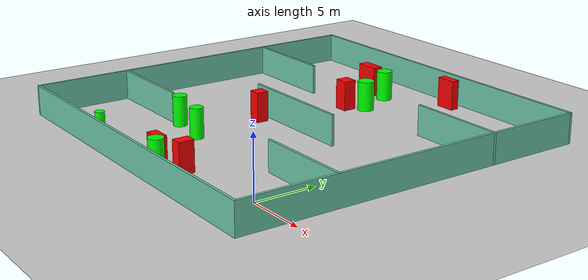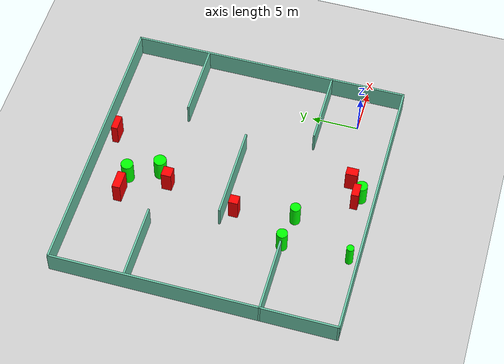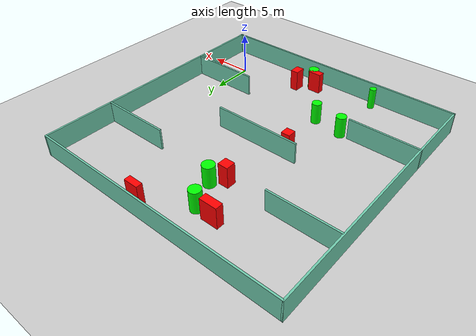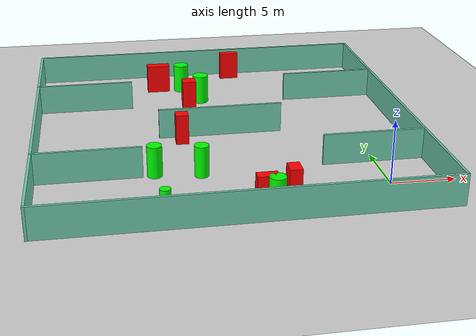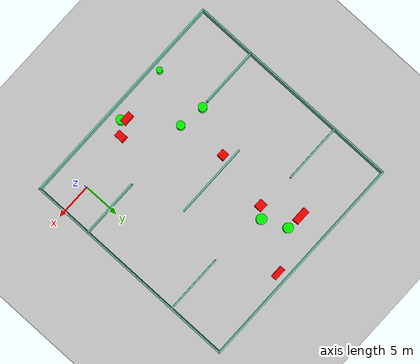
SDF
<sdf version="1.7">
 <world name="default">
  <light name="sun" type="directional">
   <pose>0 0 10 0 -0 0</pose>
   <diffuse>0.8 0.8 0.8 1</diffuse>
   <specular>0.2 0.2 0.2 1</specular>
   <attenuation>
    <range>1000</range>
    <constant>0.9</constant>
    <linear>0.01</linear>
    <quadratic>0.001</quadratic>
   </attenuation>
   <direction>-0.5 0.1 -0.9</direction>
   <spot><inner_angle>0</inner_angle><outer_angle>0</outer_angle><falloff>0</falloff></spot>
  </light>
  <model name="ground_plane">
   <static>1</static>
   <link name="link">
    <collision name="collision">
     <geometry><plane><normal>0 0 1</normal><size>100 100</size></plane></geometry>
     <surface>
      <contact><collide_bitmask>65535</collide_bitmask></contact>
      <friction><ode><mu>100</mu><mu2>50</mu2></ode></friction>
     </surface>
    </collision>
    <visual name="visual">
     <cast_shadows>0</cast_shadows>
     <geometry><plane><normal>0 0 1</normal><size>100 100</size></plane></geometry>
     <material>
      <script><uri>file://media/materials/scripts/gazebo.material</uri><name>Gazebo/Grey</name></script>
     </material>
    </visual>
   </link>
  </model>
  <gravity>0 0 -9.8</gravity>
  <magnetic_field>6e-06 2.3e-05 -4.2e-05</magnetic_field>
  <atmosphere type="adiabatic"/>
  <physics type="ode">
   <max_step_size>0.001</max_step_size>
   <real_time_factor>1</real_time_factor>
   <real_time_update_rate>1000</real_time_update_rate>
  </physics>
  <scene><ambient>0.4 0.4 0.4 1</ambient><background>0.7 0.7 0.7 1</background><shadows>1</shadows></scene>
  <spherical_coordinates>
   <surface_model>EARTH_WGS84</surface_model>
   <latitude_deg>0</latitude_deg>
   <longitude_deg>0</longitude_deg>
   <elevation>0</elevation>
   <heading_deg>0</heading_deg>
  </spherical_coordinates>
  <model name="my_base_walls">
   <link name="Wall_10">
    <collision name="Wall_10_Collision">
     <geometry><box><size>8.2 0.2 2.5</size></box></geometry>
     <pose>0 0 1.25 0 -0 0</pose>
    </collision>
    <visual name="Wall_10_Visual">
     <pose>0 0 1.25 0 -0 0</pose>
     <geometry><box><size>8.2 0.2 2.5</size></box></geometry>
     <material>
      <script><uri>file://media/materials/scripts/gazebo.material</uri><name>Gazebo/Grey</name></script>
      <ambient>0.435294 0.796078 0.67451 1</ambient>
     </material>
     <meta><layer>0</layer></meta>
    </visual>
    <pose>-11 -7 0 0 -0 0</pose>
   </link>
   <link name="Wall_12">
    <collision name="Wall_12_Collision">
     <geometry><box><size>8.2 0.2 2.5</size></box></geometry>
     <pose>0 0 1.25 0 -0 0</pose>
    </collision>
    <visual name="Wall_12_Visual">
     <pose>0 0 1.25 0 -0 0</pose>
     <geometry><box><size>8.2 0.2 2.5</size></box></geometry>
     <material>
      <script><uri>file://media/materials/scripts/gazebo.material</uri><name>Gazebo/Grey</name></script>
      <ambient>0.435294 0.796078 0.67451 1</ambient>
     </material>
     <meta><layer>0</layer></meta>
    </visual>
    <pose>-11 7 0 0 -0 0</pose>
   </link>
   <link name="Wall_14">
    <collision name="Wall_14_Collision">
     <geometry><box><size>8.2 0.2 2.5</size></box></geometry>
     <pose>0 0 1.25 0 -0 0</pose>
    </collision>
    <visual name="Wall_14_Visual">
     <pose>0 0 1.25 0 -0 0</pose>
     <geometry><box><size>8.2 0.2 2.5</size></box></geometry>
     <material>
      <script><uri>file://media/materials/scripts/gazebo.material</uri><name>Gazebo/Grey</name></script>
      <ambient>0.435294 0.796078 0.67451 1</ambient>
     </material>
     <meta><layer>0</layer></meta>
    </visual>
    <pose>11 7 0 0 -0 3.14159</pose>
   </link>
   <link name="Wall_16">
    <collision name="Wall_16_Collision">
     <geometry><box><size>10.2 0.2 2.5</size></box></geometry>
     <pose>0 0 1.25 0 -0 0</pose>
    </collision>
    <visual name="Wall_16_Visual">
     <pose>0 0 1.25 0 -0 0</pose>
     <geometry><box><size>10.2 0.2 2.5</size></box></geometry>
     <material>
      <script><uri>file://media/materials/scripts/gazebo.material</uri><name>Gazebo/Grey</name></script>
      <ambient>0.435294 0.796078 0.67451 1</ambient>
     </material>
     <meta><layer>0</layer></meta>
    </visual>
    <pose>0 0 0 0 -0 3.14159</pose>
   </link>
   <link name="Wall_2">
    <collision name="Wall_2_Collision">
     <geometry><box><size>30.2 0.2 2.5</size></box></geometry>
     <pose>0 0 1.25 0 -0 0</pose>
    </collision>
    <visual name="Wall_2_Visual">
     <pose>0 0 1.25 0 -0 0</pose>
     <geometry><box><size>30.2 0.2 2.5</size></box></geometry>
     <material>
      <script><uri>file://media/materials/scripts/gazebo.material</uri><name>Gazebo/Grey</name></script>
      <ambient>0.435294 0.796078 0.67451 1</ambient>
     </material>
     <meta><layer>0</layer></meta>
    </visual>
    <pose>0 -15 0 0 -0 3.14159</pose>
   </link>
   <link name="Wall_3">
    <collision name="Wall_3_Collision">
     <geometry><box><size>30.2 0.2 2.5</size></box></geometry>
     <pose>0 0 1.25 0 -0 0</pose>
    </collision>
    <visual name="Wall_3_Visual">
     <pose>0 0 1.25 0 -0 0</pose>
     <geometry><box><size>30.2 0.2 2.5</size></box></geometry>
     <material>
      <script><uri>file://media/materials/scripts/gazebo.material</uri><name>Gazebo/Grey</name></script>
      <ambient>0.435294 0.796078 0.67451 1</ambient>
     </material>
     <meta><layer>0</layer></meta>
    </visual>
    <pose>-15 0 0 0 -0 1.5708</pose>
   </link>
   <link name="Wall_4">
    <collision name="Wall_4_Collision">
     <geometry><box><size>30.2 0.2 2.5</size></box></geometry>
     <pose>0 0 1.25 0 -0 0</pose>
    </collision>
    <visual name="Wall_4_Visual">
     <pose>0 0 1.25 0 -0 0</pose>
     <geometry><box><size>30.2 0.2 2.5</size></box></geometry>
     <material>
      <script><uri>file://media/materials/scripts/gazebo.material</uri><name>Gazebo/Grey</name></script>
      <ambient>0.435294 0.796078 0.67451 1</ambient>
     </material>
     <meta><layer>0</layer></meta>
    </visual>
    <pose>0 15 0 0 -0 0</pose>
   </link>
   <link name="Wall_6">
    <collision name="Wall_6_Collision">
     <geometry><box><size>30.2 0.2 2.5</size></box></geometry>
     <pose>0 0 1.25 0 -0 0</pose>
    </collision>
    <visual name="Wall_6_Visual">
     <pose>0 0 1.25 0 -0 0</pose>
     <geometry><box><size>30.2 0.2 2.5</size></box></geometry>
     <material>
      <script><uri>file://media/materials/scripts/gazebo.material</uri><name>Gazebo/Grey</name></script>
      <ambient>0.435294 0.796078 0.67451 1</ambient>
     </material>
     <meta><layer>0</layer></meta>
    </visual>
    <pose>15 0 0 0 -0 1.5708</pose>
   </link>
   <link name="Wall_8">
    <collision name="Wall_8_Collision">
     <geometry><box><size>8.2 0.2 2.5</size></box></geometry>
     <pose>0 0 1.25 0 -0 0</pose>
    </collision>
    <visual name="Wall_8_Visual">
     <pose>0 0 1.25 0 -0 0</pose>
     <geometry><box><size>8.2 0.2 2.5</size></box></geometry>
     <material>
      <script><uri>file://media/materials/scripts/gazebo.material</uri><name>Gazebo/Grey</name></script>
      <ambient>0.435294 0.796078 0.67451 1</ambient>
     </material>
     <meta><layer>0</layer></meta>
    </visual>
    <pose>11 -7 0 0 -0 3.14159</pose>
   </link>
   <static>1</static>
   <pose>-11 11 0 0 -0 0</pose>
  </model>
  <model name="cylinder1">
   <static>1</static>
   <link name="link">
    <inertial>
     <mass>1</mass>
     <inertia><ixx>0.5</ixx><ixy>0</ixy><ixz>0</ixz><iyy>0.5</iyy><iyz>0</iyz><izz>1</izz></inertia>
    </inertial>
    <collision name="collision">
     <geometry><cylinder><radius>0.5801704249953403</radius><length>2.5</length></cylinder></geometry>
    </collision>
    <visual name="visual">
     <geometry><cylinder><radius>0.5801704249953403</radius><length>2.5</length></cylinder></geometry>
     <material>
      <ambient>0 1 0 1</ambient>
      <diffuse>0 1 0 1</diffuse>
      <specular>0.1 0.1 0.1 1</specular>
      <emissive>0 0 0 0</emissive>
     </material>
    </visual>
   </link>
   <pose>-17.009220270062393 4.080428145557439 1.25 0 0 0</pose>
  </model>
  <model name="cylinder2">
   <static>1</static>
   <link name="link">
    <inertial>
     <mass>1</mass>
     <inertia><ixx>0.5</ixx><ixy>0</ixy><ixz>0</ixz><iyy>0.5</iyy><iyz>0</iyz><izz>1</izz></inertia>
    </inertial>
    <collision name="collision">
     <geometry><cylinder><radius>0.6114823115640162</radius><length>2.5</length></cylinder></geometry>
    </collision>
    <visual name="visual">
     <geometry><cylinder><radius>0.6114823115640162</radius><length>2.5</length></cylinder></geometry>
     <material>
      <ambient>0 1 0 1</ambient>
      <diffuse>0 1 0 1</diffuse>
      <specular>0.1 0.1 0.1 1</specular>
      <emissive>0 0 0 0</emissive>
     </material>
    </visual>
   </link>
   <pose>-9.041372437148302 -2.3807929640087946 1.25 0 0 0</pose>
  </model>
  <model name="cylinder3">
   <static>1</static>
   <link name="link">
    <inertial>
     <mass>1</mass>
     <inertia><ixx>0.5</ixx><ixy>0</ixy><ixz>0</ixz><iyy>0.5</iyy><iyz>0</iyz><izz>1</izz></inertia>
    </inertial>
    <collision name="collision">
     <geometry><cylinder><radius>0.38918477900681864</radius><length>2.5</length></cylinder></geometry>
    </collision>
    <visual name="visual">
     <geometry><cylinder><radius>0.38918477900681864</radius><length>2.5</length></cylinder></geometry>
     <material>
      <ambient>0 1 0 1</ambient>
      <diffuse>0 1 0 1</diffuse>
      <specular>0.1 0.1 0.1 1</specular>
      <emissive>0 0 0 0</emissive>
     </material>
    </visual>
   </link>
   <pose>-16.831338698401353 -2.9822472013739154 1.25 0 0 0</pose>
  </model>
  <model name="cylinder4">
   <static>1</static>
   <link name="link">
    <inertial>
     <mass>1</mass>
     <inertia><ixx>0.5</ixx><ixy>0</ixy><ixz>0</ixz><iyy>0.5</iyy><iyz>0</iyz><izz>1</izz></inertia>
    </inertial>
    <collision name="collision">
     <geometry><cylinder><radius>0.6889906472326598</radius><length>2.5</length></cylinder></geometry>
    </collision>
    <visual name="visual">
     <geometry><cylinder><radius>0.6889906472326598</radius><length>2.5</length></cylinder></geometry>
     <material>
      <ambient>0 1 0 1</ambient>
      <diffuse>0 1 0 1</diffuse>
      <specular>0.1 0.1 0.1 1</specular>
      <emissive>0 0 0 0</emissive>
     </material>
    </visual>
   </link>
   <pose>-11.657459030447791 18.78183998681018 1.25 0 0 0</pose>
  </model>
  <model name="cylinder5">
   <static>1</static>
   <link name="link">
    <inertial>
     <mass>1</mass>
     <inertia><ixx>0.5</ixx><ixy>0</ixy><ixz>0</ixz><iyy>0.5</iyy><iyz>0</iyz><izz>1</izz></inertia>
    </inertial>
    <collision name="collision">
     <geometry><cylinder><radius>0.5525003522048388</radius><length>2.5</length></cylinder></geometry>
    </collision>
    <visual name="visual">
     <geometry><cylinder><radius>0.5525003522048388</radius><length>2.5</length></cylinder></geometry>
     <material>
      <ambient>0 1 0 1</ambient>
      <diffuse>0 1 0 1</diffuse>
      <specular>0.1 0.1 0.1 1</specular>
      <emissive>0 0 0 0</emissive>
     </material>
    </visual>
   </link>
   <pose>-13.53257489729619 3.5697921226165503 1.25 0 0 0</pose>
  </model>
  <model name="cylinder6">
   <static>1</static>
   <link name="link">
    <inertial>
     <mass>1</mass>
     <inertia><ixx>0.5</ixx><ixy>0</ixy><ixz>0</ixz><iyy>0.5</iyy><iyz>0</iyz><izz>1</izz></inertia>
    </inertial>
    <collision name="collision">
     <geometry><cylinder><radius>0.6610329050333584</radius><length>2.5</length></cylinder></geometry>
    </collision>
    <visual name="visual">
     <geometry><cylinder><radius>0.6610329050333584</radius><length>2.5</length></cylinder></geometry>
     <material>
      <ambient>0 1 0 1</ambient>
      <diffuse>0 1 0 1</diffuse>
      <specular>0.1 0.1 0.1 1</specular>
      <emissive>0 0 0 0</emissive>
     </material>
    </visual>
   </link>
   <pose>-13.085771561602689 21.95647425984116 1.25 0 0 0</pose>
  </model>
  <model name="box1">
   <static>1</static>
   <link name="link">
    <inertial>
     <mass>1</mass>
     <inertia><ixx>0.083</ixx><ixy>0</ixy><ixz>0</ixz><iyy>0.083</iyy><iyz>0</iyz><izz>0.083</izz></inertia>
    </inertial>
    <collision name="collision">
     <geometry><box><size>0.9280390275506427 1.2582773817859751 2.5</size></box></geometry>
    </collision>
    <visual name="visual">
     <geometry><box><size>0.9280390275506427 1.2582773817859751 2.5</size></box></geometry>
     <material>
      <ambient>1 0 0 1</ambient>
      <diffuse>1 0 0 1</diffuse>
      <specular>0.1 0.1 0.1 1</specular>
      <emissive>0 0 0 0</emissive>
     </material>
    </visual>
    <sensor name="my_contact" type="contact">
     <contact><collision>box_collision</collision><topic>__default_topic__</topic></contact>
    </sensor>
   </link>
   <pose>-7.540617336692309 -1.0040092499947 1.25 0 0 0</pose>
  </model>
  <model name="box2">
   <static>1</static>
   <link name="link">
    <inertial>
     <mass>1</mass>
     <inertia><ixx>0.083</ixx><ixy>0</ixy><ixz>0</ixz><iyy>0.083</iyy><iyz>0</iyz><izz>0.083</izz></inertia>
    </inertial>
    <collision name="collision">
     <geometry><box><size>1.6884786618224046 0.6936734149840735 2.5</size></box></geometry>
    </collision>
    <visual name="visual">
     <geometry><box><size>1.6884786618224046 0.6936734149840735 2.5</size></box></geometry>
     <material>
      <ambient>1 0 0 1</ambient>
      <diffuse>1 0 0 1</diffuse>
      <specular>0.1 0.1 0.1 1</specular>
      <emissive>0 0 0 0</emissive>
     </material>
    </visual>
    <sensor name="my_contact" type="contact">
     <contact><collision>box_collision</collision><topic>__default_topic__</topic></contact>
    </sensor>
   </link>
   <pose>-8.122509782955614 24.790871454802964 1.25 0 0 0</pose>
  </model>
  <model name="box3">
   <static>1</static>
   <link name="link">
    <inertial>
     <mass>1</mass>
     <inertia><ixx>0.083</ixx><ixy>0</ixy><ixz>0</ixz><iyy>0.083</iyy><iyz>0</iyz><izz>0.083</izz></inertia>
    </inertial>
    <collision name="collision">
     <geometry><box><size>1.1751631576215527 1.0901922997921212 2.5</size></box></geometry>
    </collision>
    <visual name="visual">
     <geometry><box><size>1.1751631576215527 1.0901922997921212 2.5</size></box></geometry>
     <material>
      <ambient>1 0 0 1</ambient>
      <diffuse>1 0 0 1</diffuse>
      <specular>0.1 0.1 0.1 1</specular>
      <emissive>0 0 0 0</emissive>
     </material>
    </visual>
    <sensor name="my_contact" type="contact">
     <contact><collision>box_collision</collision><topic>__default_topic__</topic></contact>
    </sensor>
   </link>
   <pose>-12.851345728787955 17.587633251879165 1.25 0 0 0</pose>
  </model>
  <model name="box4">
   <static>1</static>
   <link name="link">
    <inertial>
     <mass>1</mass>
     <inertia><ixx>0.083</ixx><ixy>0</ixy><ixz>0</ixz><iyy>0.083</iyy><iyz>0</iyz><izz>0.083</izz></inertia>
    </inertial>
    <collision name="collision">
     <geometry><box><size>1.545033343779347 0.790183780528371 2.5</size></box></geometry>
    </collision>
    <visual name="visual">
     <geometry><box><size>1.545033343779347 0.790183780528371 2.5</size></box></geometry>
     <material>
      <ambient>1 0 0 1</ambient>
      <diffuse>1 0 0 1</diffuse>
      <specular>0.1 0.1 0.1 1</specular>
      <emissive>0 0 0 0</emissive>
     </material>
    </visual>
    <sensor name="my_contact" type="contact">
     <contact><collision>box_collision</collision><topic>__default_topic__</topic></contact>
    </sensor>
   </link>
   <pose>-9.684555832123248 -1.9371358174122788 1.25 0 0 0</pose>
  </model>
  <model name="box5">
   <static>1</static>
   <link name="link">
    <inertial>
     <mass>1</mass>
     <inertia><ixx>0.083</ixx><ixy>0</ixy><ixz>0</ixz><iyy>0.083</iyy><iyz>0</iyz><izz>0.083</izz></inertia>
    </inertial>
    <collision name="collision">
     <geometry><box><size>1.0290409471787672 1.0100657721575215 2.5</size></box></geometry>
    </collision>
    <visual name="visual">
     <geometry><box><size>1.0290409471787672 1.0100657721575215 2.5</size></box></geometry>
     <material>
      <ambient>1 0 0 1</ambient>
      <diffuse>1 0 0 1</diffuse>
      <specular>0.1 0.1 0.1 1</specular>
      <emissive>0 0 0 0</emissive>
     </material>
    </visual>
    <sensor name="my_contact" type="contact">
     <contact><collision>box_collision</collision><topic>__default_topic__</topic></contact>
    </sensor>
   </link>
   <pose>-14.328052207800763 9.907770150491466 1.25 0 0 0</pose>
  </model>
  <model name="box6">
   <static>1</static>
   <link name="link">
    <inertial>
     <mass>1</mass>
     <inertia><ixx>0.083</ixx><ixy>0</ixy><ixz>0</ixz><iyy>0.083</iyy><iyz>0</iyz><izz>0.083</izz></inertia>
    </inertial>
    <collision name="collision">
     <geometry><box><size>2.0202196373751575 0.86428895299502 2.5</size></box></geometry>
    </collision>
    <visual name="visual">
     <geometry><box><size>2.0202196373751575 0.86428895299502 2.5</size></box></geometry>
     <material>
      <ambient>1 0 0 1</ambient>
      <diffuse>1 0 0 1</diffuse>
      <specular>0.1 0.1 0.1 1</specular>
      <emissive>0 0 0 0</emissive>
     </material>
    </visual>
    <sensor name="my_contact" type="contact">
     <contact><collision>box_collision</collision><topic>__default_topic__</topic></contact>
    </sensor>
   </link>
   <pose>-15.220076237511483 22.142113214330983 1.25 0 0 0</pose>
  </model>
 </world>
</sdf>
